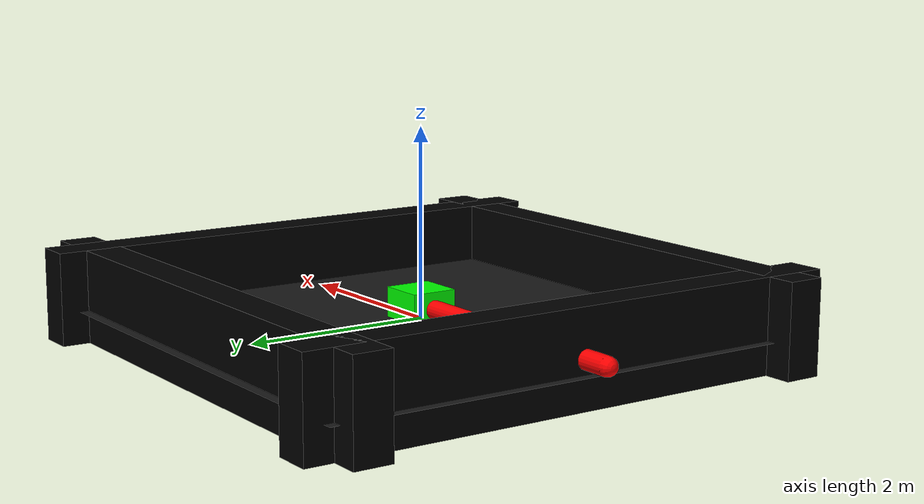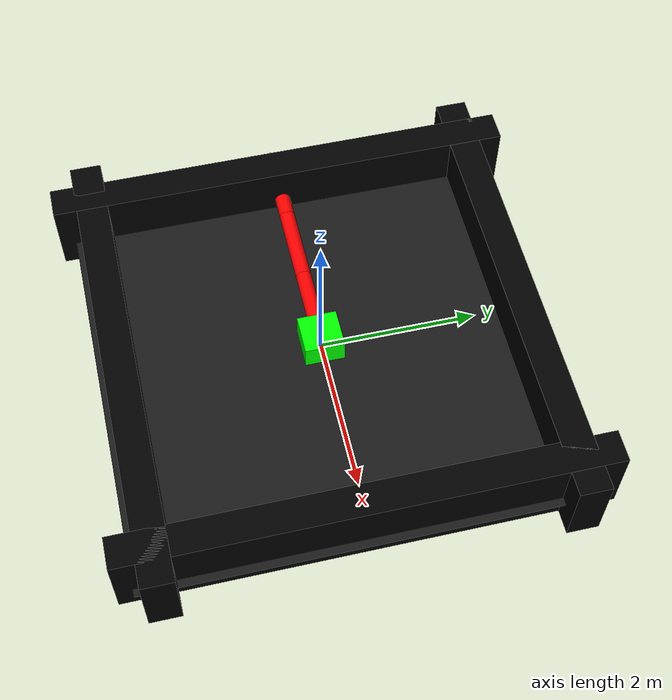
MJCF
<mujoco model="swimmer">
  <compiler angle="degree" coordinate="local" inertiafromgeom="true" meshdir="mesh" texturedir="textures"/>
  <option gravity="0 0 -9.81" integrator="Euler" iterations="20" timestep=".01" />
  <default>
    <!-- controls rope and color  -->
      <joint armature="0.04" damping="1"/>
      <geom conaffinity="1" condim="3" contype="1" density="10" friction=".8 .1 .1" margin="0.002" rgba="0.8 0.6 .4 1" />
  </default>

  <worldbody>
    <light cutoff="100" diffuse="1 1 1" dir="-0 0 -1" directional="true" exponent="1" pos="0 0 0.0" specular=".1 .1 .1"/>

    <geom rgba="0.1 0.1 .1 1." conaffinity="1" density='0.' contype="1" condim="3" name="table" pos="0 0.0 0." size="2.8 2.8 0.1" type="plane" />

      <body name="torso" pos="0 0 0.14">
          <geom density="70000" fromto="0 0 0 -1 0 0" size="0.1" type="capsule" rgba="1 0 0 1" name='t'/>
          <joint axis="0 0 1" name="rot0" pos="0 0 0" type="hinge"/>
          <body name="tBall" pos="0 0 -.05">
            <geom density="70000" fromto="0 0 0 0.02 0 0" size="0.01" type="capsule" rgba='1 0 0 1' />
            <joint axis="0 0 1" name="tBallj" pos="0 0 0" type="hinge"/>
          </body>
          <body name="mid" pos="-1 0 0">
            <body name="joint1" pos="0 0 .05">
              <geom density="70000" fromto="0 0 0 0.02 0 0" size="0.01" type="capsule" rgba='1 0 0 1'/>
              <joint axis="0 0 1" name="joint1j" pos="0 0 0" type="hinge"/>
            </body>
            <geom density="70000" name="m" fromto="0 0 0 -1 0 0" size="0.1" type="capsule" rgba='1 0 0 1'/>
            <joint axis="0 0 1" limited="false" name="rot1" pos="0 0 0" type="hinge"/>
            <body name="back" pos="-1 0 0">
              <body name="joint2" pos="0 0 .05">
              <geom density="70000" fromto="0 0 0 0.02 0 0" size="0.01" type="capsule" rgba='1 0 0 1' />
              <joint axis="0 0 1" name="joint2j" pos="0 0 0" type="hinge"/>
              </body>
              <geom density="70000" name="b" fromto="0 0 0 -1 0 0" size="0.1" type="capsule" rgba='1 0 0 1'/>
              <joint axis="0 0 1" name="rot2" pos="0 0 0" type="hinge"/>
              <body name="bBall" pos="-1 0 -.06">
                <geom density="70000" fromto="0 0 0 -.02 0 0" size="0.01" type="capsule" rgba='1 0 0 1'/>
                <joint axis="0 0 1" name="bBallj" pos="0 0 0" type="hinge"/>
              </body>
            </body>
          </body>
      </body>
      <body name="obj" pos='0 0 .165'>
        <joint axis="1 0 0" damping="1.5" name="obj1_slidex" pos="0 0 0.05" range="-10.3213 10.3" type="slide" />
        <joint axis="0 1 0" damping="1.5" name="obj1_slidey" pos="0 0 0.05" range="-10.3213 10.3" type="slide" />
        <geom conaffinity="1" contype="1" condim="3" pos=".0 0 0." size="0.25 0.25 0.16" rgba="0.0  1.0 0.0 1" type="box" />
      </body>
        <body name="north" pos = "0 2.5 .14">
          <geom conaffinity="1" contype="1" condim="3"  pos="0. 0. 0." size="3.0 .2 0.5" rgba="0. 0. 0. 1" type="box" friction="2 2 2"/>
        </body>
        <body name="south" pos = ".0 -2.5 .14">
          <geom conaffinity="1" contype="1" condim="3"  pos="0. 0. 0." size="3 .2 0.5" rgba=".0  0. 0. 1" type="box" friction="2 2 2"/>
        </body>
        <body name="east" pos = "2.5 0 .14">
          <geom conaffinity="1" contype="1" condim="3"  pos="0. 0. 0." size=".2 3 0.5" rgba="0. 0. 0. 1" type="box" friction="2 2 2"/>
        </body>
        <body name="west" pos = "-2.5 0 .14">
          <geom conaffinity="1" contype="1" condim="3"  pos="0. 0. 0." size=".2 3 0.5" rgba=".0  0. 0. 1" type="box" friction="2 2 2"/>
        </body>
  </worldbody>

  <actuator>
        <motor joint="obj1_slidex" gear="18"/>
        <motor joint="obj1_slidey" gear="18"/>
  </actuator>
</mujoco>
